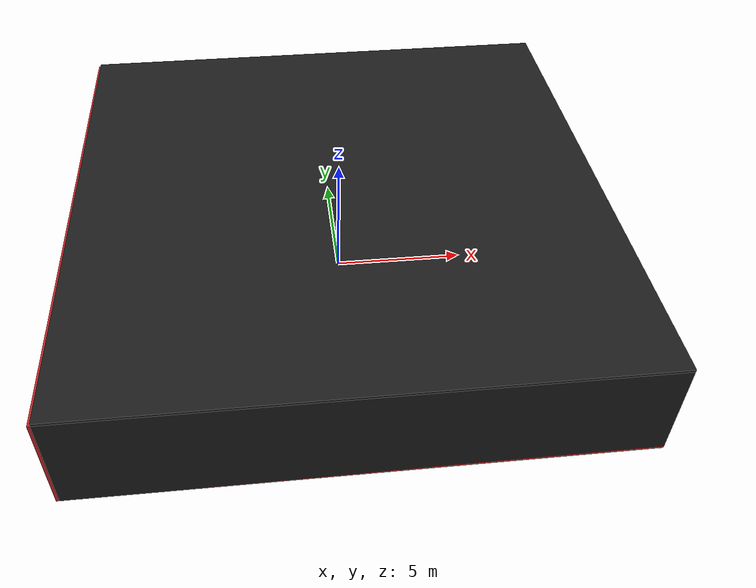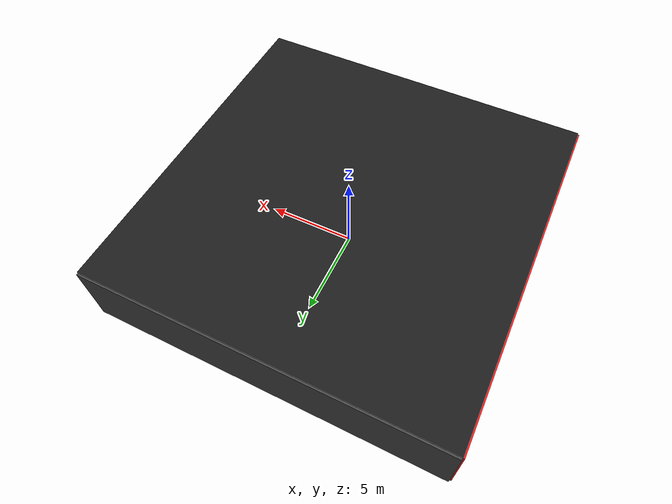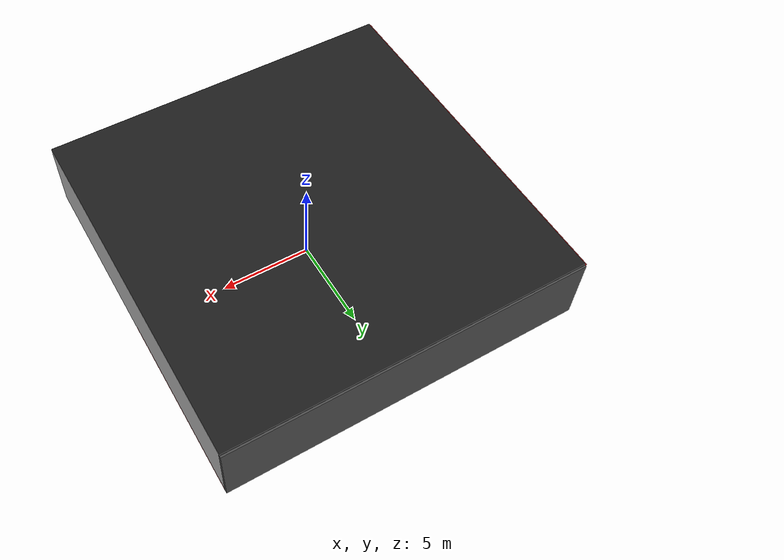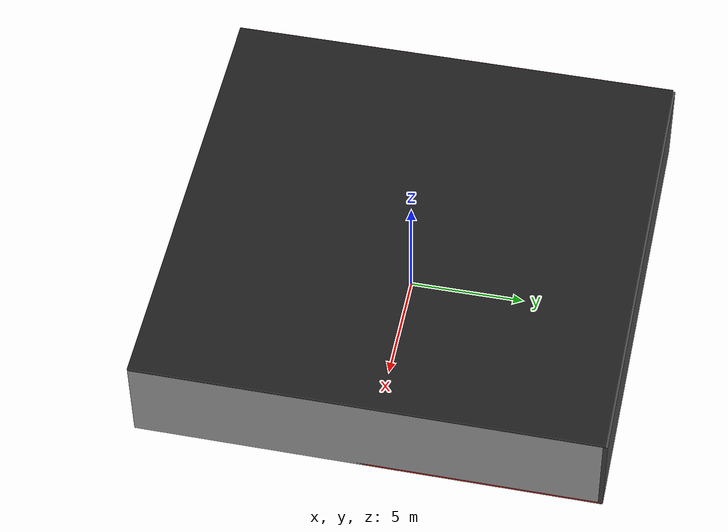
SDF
<sdf version="1.4">
 <world name="default">
  <physics type="ode">
   <max_step_size>0.001</max_step_size>
   <real_time_factor>1</real_time_factor>
   <real_time_update_rate>1000</real_time_update_rate>
   <gravity>0 0 -9.8</gravity>
  </physics>
  <scene><ambient>0.4 0.4 0.4 1</ambient><background>0.7 0.7 0.7 1</background><shadows>1</shadows></scene>
  <model name="Surrounding">
   <static>1</static>
   <link name="Ceiling">
    <collision name="Ceiling_Collision"><geometry><box><size>20 20 0.1</size></box></geometry></collision>
    <visual name="Ceiling_Visual">
     <geometry><box><size>20 20 0.1</size></box></geometry>
     <material>
      <script><uri>file://media/materials/scripts/gazebo.material</uri><name>Gazebo/Black</name></script>
     </material>
    </visual>
    <pose>0 0 4.05 0 0 0</pose>
   </link>
   <link name="Wall_South">
    <collision name="Wall_South_Collision">
     <geometry><box><size>20 0 4</size></box></geometry>
     <pose>0 0 2 0 -0 0</pose>
    </collision>
    <visual name="Wall_South_Visual">
     <pose>0 0 2 0 -0 0</pose>
     <geometry><box><size>20 0 4</size></box></geometry>
     <material>
      <script><uri>file://media/materials/scripts/gazebo.material</uri><name>Gazebo/Black</name></script>
     </material>
    </visual>
    <velocity_decay><linear>0</linear><angular>0</angular></velocity_decay>
    <pose>0 -10 0 0 -0 0</pose>
   </link>
   <link name="Wall_East">
    <collision name="Wall_21_Collision">
     <geometry><box><size>20 0 4</size></box></geometry>
     <pose>0 0 2 0 -0 0</pose>
    </collision>
    <visual name="Wall_21_Visual">
     <pose>0 0 2 0 -0 0</pose>
     <geometry><box><size>20 0 4</size></box></geometry>
     <material>
      <script><uri>file://media/materials/scripts/gazebo.material</uri><name>Gazebo/CloudySky</name></script>
     </material>
    </visual>
    <velocity_decay><linear>0</linear><angular>0</angular></velocity_decay>
    <pose>10 0 0 0 -0 1.5708</pose>
   </link>
   <link name="Wall_North">
    <collision name="Wall_22_Collision">
     <geometry><box><size>20 0.2 4</size></box></geometry>
     <pose>0 0 2 0 -0 0</pose>
    </collision>
    <visual name="Wall_22_Visual">
     <pose>0 0 2 0 -0 0</pose>
     <geometry><box><size>20 0.2 4</size></box></geometry>
     <material>
      <script><uri>file://media/materials/scripts/gazebo.material</uri><name>Gazebo/Road</name></script>
     </material>
    </visual>
    <velocity_decay><linear>0</linear><angular>0</angular></velocity_decay>
    <pose>0 10 0 0 -0 0</pose>
   </link>
   <link name="Wall_West">
    <collision name="Wall_23_Collision">
     <geometry><box><size>20 0.2 4</size></box></geometry>
     <pose>0 0 2 0 -0 0</pose>
    </collision>
    <visual name="Wall_23_Visual">
     <pose>0 0 2 0 -0 0</pose>
     <geometry><box><size>20 0.2 4</size></box></geometry>
     <material>
      <script><uri>file://media/materials/scripts/gazebo.material</uri><name>Gazebo/RedGlow</name></script>
     </material>
    </visual>
    <velocity_decay><linear>0</linear><angular>0</angular></velocity_decay>
    <pose>-10 0 0 0 0 -1.5708</pose>
   </link>
   <link name="Ground_link">
    <collision name="collision">
     <pose>0 0 .05 0 -0 0</pose>
     <geometry><box><size>20 20 0.1</size></box></geometry>
    </collision>
    <visual name="visual">
     <pose>0 0 .05 0 -0 0</pose>
     <geometry><box><size>20 20 0.1</size></box></geometry>
     <material>
      <script><uri>file://media/materials/scripts/gazebo.material</uri><name>Gazebo/RedBright</name></script>
     </material>
    </visual>
   </link>
   <static>1</static>
  </model>
  <spherical_coordinates>
   <surface_model>EARTH_WGS84</surface_model>
   <latitude_deg>0</latitude_deg>
   <longitude_deg>0</longitude_deg>
   <elevation>0</elevation>
   <heading_deg>0</heading_deg>
  </spherical_coordinates>
  <light name="lightball_0" type="diffuse">
   <diffuse>0.8 0.8 0.8 1</diffuse>
   <specular>0.2 0.2 0.2 1</specular>
   <attenuation>
    <range>100</range>
    <constant>0.7</constant>
    <linear>0.01</linear>
    <quadratic>0.001</quadratic>
   </attenuation>
   <direction>-0.5 0.1 -0.9</direction>
   <pose>-5.65544044514 7.02191663971 2.21625403537 0 0 0</pose>
  </light>
  <light name="lightball_1" type="diffuse">
   <diffuse>0.8 0.8 0.8 1</diffuse>
   <specular>0.2 0.2 0.2 1</specular>
   <attenuation>
    <range>100</range>
    <constant>0.7</constant>
    <linear>0.01</linear>
    <quadratic>0.001</quadratic>
   </attenuation>
   <direction>-0.5 0.1 -0.9</direction>
   <pose>0.12566651512 4.26476824258 2.81519358849 0 0 0</pose>
  </light>
  <light name="lightball_2" type="diffuse">
   <diffuse>0.8 0.8 0.8 1</diffuse>
   <specular>0.2 0.2 0.2 1</specular>
   <attenuation>
    <range>100</range>
    <constant>0.7</constant>
    <linear>0.01</linear>
    <quadratic>0.001</quadratic>
   </attenuation>
   <direction>-0.5 0.1 -0.9</direction>
   <pose>2.00375066644 9.4412745407 3.8100584397 0 0 0</pose>
  </light>
  <light name="lightball_3" type="diffuse">
   <diffuse>0.8 0.8 0.8 1</diffuse>
   <specular>0.2 0.2 0.2 1</specular>
   <attenuation>
    <range>100</range>
    <constant>0.7</constant>
    <linear>0.01</linear>
    <quadratic>0.001</quadratic>
   </attenuation>
   <direction>-0.5 0.1 -0.9</direction>
   <pose>-9.04742033925 7.45092103965 3.52242452734 0 0 0</pose>
  </light>
  <light name="lightball_4" type="diffuse">
   <diffuse>0.8 0.8 0.8 1</diffuse>
   <specular>0.2 0.2 0.2 1</specular>
   <attenuation>
    <range>100</range>
    <constant>0.7</constant>
    <linear>0.01</linear>
    <quadratic>0.001</quadratic>
   </attenuation>
   <direction>-0.5 0.1 -0.9</direction>
   <pose>0.954119508809 2.45390739527 2.41474506617 0 0 0</pose>
  </light>
  <light name="lightball_5" type="diffuse">
   <diffuse>0.8 0.8 0.8 1</diffuse>
   <specular>0.2 0.2 0.2 1</specular>
   <attenuation>
    <range>100</range>
    <constant>0.7</constant>
    <linear>0.01</linear>
    <quadratic>0.001</quadratic>
   </attenuation>
   <direction>-0.5 0.1 -0.9</direction>
   <pose>-9.25364787772 9.75307263464 3.48783780533 0 0 0</pose>
  </light>
  <light name="lightball_6" type="diffuse">
   <diffuse>0.8 0.8 0.8 1</diffuse>
   <specular>0.2 0.2 0.2 1</specular>
   <attenuation>
    <range>100</range>
    <constant>0.7</constant>
    <linear>0.01</linear>
    <quadratic>0.001</quadratic>
   </attenuation>
   <direction>-0.5 0.1 -0.9</direction>
   <pose>4.6330003109 7.43826111415 1.7217187812 0 0 0</pose>
  </light>
  <light name="lightball_7" type="diffuse">
   <diffuse>0.8 0.8 0.8 1</diffuse>
   <specular>0.2 0.2 0.2 1</specular>
   <attenuation>
    <range>100</range>
    <constant>0.7</constant>
    <linear>0.01</linear>
    <quadratic>0.001</quadratic>
   </attenuation>
   <direction>-0.5 0.1 -0.9</direction>
   <pose>3.90048517885 -1.39625332285 3.67928792765 0 0 0</pose>
  </light>
  <light name="lightball_8" type="diffuse">
   <diffuse>0.8 0.8 0.8 1</diffuse>
   <specular>0.2 0.2 0.2 1</specular>
   <attenuation>
    <range>100</range>
    <constant>0.7</constant>
    <linear>0.01</linear>
    <quadratic>0.001</quadratic>
   </attenuation>
   <direction>-0.5 0.1 -0.9</direction>
   <pose>-9.45777092876 8.31967509416 0.876376761826 0 0 0</pose>
  </light>
  <light name="lightball_9" type="diffuse">
   <diffuse>0.8 0.8 0.8 1</diffuse>
   <specular>0.2 0.2 0.2 1</specular>
   <attenuation>
    <range>100</range>
    <constant>0.7</constant>
    <linear>0.01</linear>
    <quadratic>0.001</quadratic>
   </attenuation>
   <direction>-0.5 0.1 -0.9</direction>
   <pose>-5.054435005 9.84413178763 1.83237255127 0 0 0</pose>
  </light>
  <light name="lightball_10" type="diffuse">
   <diffuse>0.8 0.8 0.8 1</diffuse>
   <specular>0.2 0.2 0.2 1</specular>
   <attenuation>
    <range>100</range>
    <constant>0.7</constant>
    <linear>0.01</linear>
    <quadratic>0.001</quadratic>
   </attenuation>
   <direction>-0.5 0.1 -0.9</direction>
   <pose>-0.0193565742356 9.38335470749 0.862201896596 0 0 0</pose>
  </light>
  <light name="lightball_11" type="diffuse">
   <diffuse>0.8 0.8 0.8 1</diffuse>
   <specular>0.2 0.2 0.2 1</specular>
   <attenuation>
    <range>100</range>
    <constant>0.7</constant>
    <linear>0.01</linear>
    <quadratic>0.001</quadratic>
   </attenuation>
   <direction>-0.5 0.1 -0.9</direction>
   <pose>6.50033916668 -5.27916973938 1.75034545121 0 0 0</pose>
  </light>
  <light name="lightball_12" type="diffuse">
   <diffuse>0.8 0.8 0.8 1</diffuse>
   <specular>0.2 0.2 0.2 1</specular>
   <attenuation>
    <range>100</range>
    <constant>0.7</constant>
    <linear>0.01</linear>
    <quadratic>0.001</quadratic>
   </attenuation>
   <direction>-0.5 0.1 -0.9</direction>
   <pose>0.205709833052 -5.02302526833 2.53089565744 0 0 0</pose>
  </light>
  <include><uri>model://table</uri><pose>-6.75000601268 4.03980003492 0 0 0 2.28812645972</pose></include>
  <include><uri>model://cabinet</uri><pose>-4.75488977946 -0.812971638849 0 0 0 2.36401537334</pose></include>
  <include>
   <uri>model://construction_cone</uri>
   <pose>-4.95462278742 3.72851975318 0 0 0 1.71001068548</pose>
  </include>
  <include>
   <uri>model://construction_cone</uri>
   <pose>-1.63628865783 4.46306849179 0 0 0 2.97767426187</pose>
  </include>
  <include>
   <uri>model://robocup_3Dsim_goal</uri>
   <pose>-1.00468339253 8.1021764121 0 0 0 2.06685353866</pose>
  </include>
  <include><uri>model://cabinet</uri><pose>1.27231313472 -7.12629946406 0 0 0 1.23900010423</pose></include>
  <include><uri>model://cabinet</uri><pose>3.81722885604 2.24252906187 0 0 0 2.25037412476</pose></include>
  <include><uri>model://cabinet</uri><pose>7.40655995103 -7.56168096835 0 0 0 2.94491494929</pose></include>
  <include><uri>model://cabinet</uri><pose>7.50240175398 3.97386197792 0 0 0 1.65293978229</pose></include>
 </world>
</sdf>

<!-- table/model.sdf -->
<sdf version="1.5">
  <model name="table">
    <static>true</static>
    <link name="link">
      <collision name="surface">
        <pose>0 0 1.0 0 0 0</pose>
        <geometry>
          <box>
            <size>1.5 0.8 0.03</size>
          </box>
        </geometry>
        <surface>
          <friction>
            <ode>
              <mu>0.6</mu>
              <mu2>0.6</mu2>
            </ode>
          </friction>
        </surface>
      </collision>
      <visual name="visual1">
        <pose>0 0 1.0 0 0 0</pose>
        <geometry>
          <box>
            <size>1.5 0.8 0.03</size>
          </box>
        </geometry>
        <material>
          <script>
            <uri>model://media/materials/scripts/gazebo.material</uri>
            <name>Gazebo/Wood</name>
          </script>
        </material>
      </visual>
      <collision name="front_left_leg">
        <pose>0.68 0.38 0.5 0 0 0</pose>
        <geometry>
          <cylinder>
            <radius>0.02</radius>
            <length>1.0</length>
          </cylinder>
        </geometry>
      </collision>
      <visual name="front_left_leg">
        <pose>0.68 0.38 0.5 0 0 0</pose>
        <geometry>
          <cylinder>
            <radius>0.02</radius>
            <length>1.0</length>
          </cylinder>
        </geometry>
        <material>
          <script>
            <uri>model://media/materials/scripts/gazebo.material</uri>
            <name>Gazebo/Grey</name>
          </script>
        </material>
      </visual>
      <collision name="front_right_leg">
        <pose>0.68 -0.38 0.5 0 0 0</pose>
        <geometry>
          <cylinder>
            <radius>0.02</radius>
            <length>1.0</length>
          </cylinder>
        </geometry>
      </collision>
      <visual name="front_right_leg">
        <pose>0.68 -0.38 0.5 0 0 0</pose>
        <geometry>
          <cylinder>
            <radius>0.02</radius>
            <length>1.0</length>
          </cylinder>
        </geometry>
        <material>
          <script>
            <uri>model://media/materials/scripts/gazebo.material</uri>
            <name>Gazebo/Grey</name>
          </script>
        </material>
      </visual>
      <collision name="back_right_leg">
        <pose>-0.68 -0.38 0.5 0 0 0</pose>
        <geometry>
          <cylinder>
            <radius>0.02</radius>
            <length>1.0</length>
          </cylinder>
        </geometry>
      </collision>
      <visual name="back_right_leg">
        <pose>-0.68 -0.38 0.5 0 0 0</pose>
        <geometry>
          <cylinder>
            <radius>0.02</radius>
            <length>1.0</length>
          </cylinder>
        </geometry>
        <material>
          <script>
            <uri>model://media/materials/scripts/gazebo.material</uri>
            <name>Gazebo/Grey</name>
          </script>
        </material>
      </visual>
      <collision name="back_left_leg">
        <pose>-0.68 0.38 0.5 0 0 0</pose>
        <geometry>
          <cylinder>
            <radius>0.02</radius>
            <length>1.0</length>
          </cylinder>
        </geometry>
      </collision>
      <visual name="back_left_leg">
        <pose>-0.68 0.38 0.5 0 0 0</pose>
        <geometry>
          <cylinder>
            <radius>0.02</radius>
            <length>1.0</length>
          </cylinder>
        </geometry>
        <material>
          <script>
            <uri>model://media/materials/scripts/gazebo.material</uri>
            <name>Gazebo/Grey</name>
          </script>
        </material>
      </visual>
    </link>
  </model>
</sdf>

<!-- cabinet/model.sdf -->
<sdf version="1.5">
  <model name="cabinet">
    <static>true</static>
    <link name="cabinet_bottom_plate">
      <inertial>
        <pose>0 0 -1 0 0 0</pose>
        <inertia>
          <ixx>2.050000</ixx>
          <ixy>0</ixy>
          <ixz>0</ixz>
          <iyy>2.050000</iyy>
          <iyz>0</iyz>
          <izz>2.050000</izz>
        </inertia>
        <mass>25.000000</mass>
      </inertial>
      <collision name="cabinet_bottom_plate_geom">
        <pose>0 0 0.010000 0 0 0</pose>
        <geometry>
          <box>
            <size>0.450000 0.450000 0.020000</size>
          </box>
        </geometry>
      </collision>
      <visual name="cabinet_bottom_plate_geom_visual">
        <pose>0 0 0.010000 0 0 0</pose>
        <geometry>
          <box>
            <size>0.450000 0.450000 0.020000</size>
          </box>
        </geometry>
        <material>
          <script>
            <uri>model://media/materials/scripts/gazebo.material</uri>
            <name>Gazebo/Wood</name>
          </script>
        </material>
      </visual>
      <collision name="cabinet_bottom_plate_geom_cabinet_back_plate">
        <pose>0.235000 0 0.510000 0 0 0</pose>
        <geometry>
          <box>
            <size>0.020000 0.450000 1.020000</size>
          </box>
        </geometry>
      </collision>
      <visual name="cabinet_bottom_plate_geom_cabinet_back_plate_visual">
        <pose>0.235000 0 0.510000 0 0 0</pose>
        <geometry>
          <box>
            <size>0.020000 0.450000 1.020000</size>
          </box>
        </geometry>
        <material>
          <script>
            <uri>model://media/materials/scripts/gazebo.material</uri>
            <name>Gazebo/Wood</name>
          </script>
        </material>
      </visual>
      <collision name="cabinet_bottom_plate_geom_cabinet_left_plate">
        <pose>0 0.235000 0.510000 0 0 0</pose>
        <geometry>
          <box>
            <size>0.450000 0.020000 1.020000</size>
          </box>
        </geometry>
      </collision>
      <visual name="cabinet_bottom_plate_geom_cabinet_left_plate_visual">
        <pose>0 0.235000 0.510000 0 0 0</pose>
        <geometry>
          <box>
            <size>0.450000 0.020000 1.020000</size>
          </box>
        </geometry>
        <material>
          <script>
            <uri>model://media/materials/scripts/gazebo.material</uri>
            <name>Gazebo/Wood</name>
          </script>
        </material>
      </visual>
      <collision name="cabinet_bottom_plate_geom_cabinet_middle_plate">
        <pose>0 0 0.510000 0 0 0</pose>
        <geometry>
          <box>
            <size>0.450000 0.450000 0.020000</size>
          </box>
        </geometry>
      </collision>
      <visual name="cabinet_bottom_plate_geom_cabinet_middle_plate_visual">
        <pose>0 0 0.510000 0 0 0</pose>
        <geometry>
          <box>
            <size>0.450000 0.450000 0.020000</size>
          </box>
        </geometry>
        <material>
          <script>
            <uri>model://media/materials/scripts/gazebo.material</uri>
            <name>Gazebo/Wood</name>
          </script>
        </material>
      </visual>
      <collision name="cabinet_bottom_plate_geom_cabinet_right_plate">
        <pose>0 -0.235000 0.510000 0 0 0</pose>
        <geometry>
          <box>
            <size>0.450000 0.020000 1.020000</size>
          </box>
        </geometry>
      </collision>
      <visual name="cabinet_bottom_plate_geom_cabinet_right_plate_visual">
        <pose>0 -0.235000 0.510000 0 0 0</pose>
        <geometry>
          <box>
            <size>0.450000 0.020000 1.020000</size>
          </box>
        </geometry>
        <material>
          <script>
            <uri>model://media/materials/scripts/gazebo.material</uri>
            <name>Gazebo/Wood</name>
          </script>
        </material>
      </visual>
      <collision name="cabinet_bottom_plate_geom_cabinet_top_plate">
        <pose>0 0 1.010000 0 0 0</pose>
        <geometry>
          <box>
            <size>0.450000 0.450000 0.020000</size>
          </box>
        </geometry>
      </collision>
      <visual name="cabinet_bottom_plate_geom_cabinet_top_plate_visual">
        <pose>0 0 1.010000 0 0 0</pose>
        <geometry>
          <box>
            <size>0.450000 0.450000 0.020000</size>
          </box>
        </geometry>
        <material>
          <script>
            <uri>model://media/materials/scripts/gazebo.material</uri>
            <name>Gazebo/Wood</name>
          </script>
        </material>
      </visual>
    </link>
  </model>
</sdf>

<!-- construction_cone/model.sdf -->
<sdf version="1.5">
  <model name="Construction Cone">
    <link name="link">
      <collision name="collision">
        <geometry>
          <mesh>
            <scale>10 10 10</scale>
            <uri>file://isr-testbed/construction_cone/meshes/construction_cone.dae</uri>
          </mesh>
        </geometry>
      </collision>
      <visual name="visual">
        <geometry>
          <mesh>
            <scale>10 10 10</scale>
            <uri>file://isr-testbed/construction_cone/meshes/construction_cone.dae</uri>
          </mesh>
        </geometry>
      </visual>
    </link>
  </model>
</sdf>

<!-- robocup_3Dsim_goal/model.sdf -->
<sdf version="1.5">
  <model name="robocup_3d_goal">
    <static>true</static>
    <link name="left_post">
      <pose>0 1.05 0.45 0 0 0</pose>
      <collision name="collision">
        <geometry>
          <cylinder>
            <radius>0.05</radius>
            <length>0.9</length>
          </cylinder>
        </geometry>
      </collision>
      <visual name="visual">
        <geometry>
          <cylinder>
            <radius>0.05</radius>
            <length>0.9</length>
          </cylinder>
        </geometry>
        <material>
          <script>
            <uri>file://media/materials/scripts/gazebo.material</uri>
            <name>Gazebo/ZincYellow</name>
          </script>
        </material>
      </visual>
    </link>
    <link name="left_support_horiz_lower">
      <pose>0.30 1.05 0.01 0 0 0</pose>
      <collision name="collision">
        <geometry>
          <box>
            <size>0.50 0.02 0.02</size>
          </box>
        </geometry>
      </collision>
      <visual name="visual">
        <geometry>
          <box>
            <size>0.50 0.02 0.02</size>
          </box>
        </geometry>
        <material>
          <script>
            <uri>file://media/materials/scripts/gazebo.material</uri>
            <name>Gazebo/White</name>
          </script>
        </material>
      </visual>
    </link>
    <link name="left_support_horiz_upper">
      <pose>0.30 1.05 0.79 0 0 0</pose>
      <collision name="collision">
        <geometry>
          <box>
            <size>0.50 0.02 0.02</size>
          </box>
        </geometry>
      </collision>
      <visual name="visual">
        <geometry>
          <box>
            <size>0.50 0.02 0.02</size>
          </box>
        </geometry>
        <material>
          <script>
            <uri>file://media/materials/scripts/gazebo.material</uri>
            <name>Gazebo/White</name>
          </script>
        </material>
      </visual>
    </link>
    <link name="left_support_vertical">
      <pose>0.56 1.05 0.4 0 1.5708 0</pose>
      <collision name="collision">
        <geometry>
          <box>
            <size>0.80 0.02 0.02</size>
          </box>
        </geometry>
      </collision>
      <visual name="visual">
        <geometry>
          <box>
            <size>0.80 0.02 0.02</size>
          </box>
        </geometry>
        <material>
          <script>
            <uri>file://media/materials/scripts/gazebo.material</uri>
            <name>Gazebo/White</name>
          </script>
        </material>
      </visual>
    </link>
    <link name="right_support_horiz_lower">
      <pose>0.30 -1.05 0.01 0 0 0</pose>
      <collision name="collision">
        <geometry>
          <box>
            <size>0.50 0.02 0.02</size>
          </box>
        </geometry>
      </collision>
      <visual name="visual">
        <geometry>
          <box>
            <size>0.50 0.02 0.02</size>
          </box>
        </geometry>
        <material>
          <script>
            <uri>file://media/materials/scripts/gazebo.material</uri>
            <name>Gazebo/White</name>
          </script>
        </material>
      </visual>
    </link>
    <link name="right_support_horiz_upper">
      <pose>0.30 -1.05 0.79 0 0 0</pose>
      <collision name="collision">
        <geometry>
          <box>
            <size>0.50 0.02 0.02</size>
          </box>
        </geometry>
      </collision>
      <visual name="visual">
        <geometry>
          <box>
            <size>0.50 0.02 0.02</size>
          </box>
        </geometry>
        <material>
          <script>
            <uri>file://media/materials/scripts/gazebo.material</uri>
            <name>Gazebo/White</name>
          </script>
        </material>
      </visual>
    </link>
    <link name="right_support_vertical">
      <pose>0.56 -1.05 0.4 0 1.5708 0</pose>
      <collision name="collision">
        <geometry>
          <box>
            <size>0.80 0.02 0.02</size>
          </box>
        </geometry>
      </collision>
      <visual name="visual">
        <geometry>
          <box>
            <size>0.80 0.02 0.02</size>
          </box>
        </geometry>
        <material>
          <script>
            <uri>file://media/materials/scripts/gazebo.material</uri>
            <name>Gazebo/White</name>
          </script>
        </material>
      </visual>
    </link>
    <link name="center_support_horiz_lower">
      <pose>0.56 0 0.01 0 1.5708 0</pose>
      <collision name="collision">
        <geometry>
          <box>
            <size>0.02 2.08 0.02</size>
          </box>
        </geometry>
      </collision>
      <visual name="visual">
        <geometry>
          <box>
            <size>0.02 2.08 0.02</size>
          </box>
        </geometry>
        <material>
          <script>
            <uri>file://media/materials/scripts/gazebo.material</uri>
            <name>Gazebo/White</name>
          </script>
        </material>
      </visual>
    </link>
    <link name="center_support_horiz_upper">
      <pose>0.56 0 0.79 0 1.5708 0</pose>
      <collision name="collision">
        <geometry>
          <box>
            <size>0.02 2.08 0.02</size>
          </box>
        </geometry>
      </collision>
      <visual name="visual">
        <geometry>
          <box>
            <size>0.02 2.08 0.02</size>
          </box>
        </geometry>
        <material>
          <script>
            <uri>file://media/materials/scripts/gazebo.material</uri>
            <name>Gazebo/White</name>
          </script>
        </material>
      </visual>
    </link>
    <link name="right_post">
      <pose>0 -1.05 0.45 0 0 0</pose>
      <collision name="collision">
        <geometry>
          <cylinder>
            <radius>0.05</radius>
            <length>0.9</length>
          </cylinder>
        </geometry>
      </collision>
      <visual name="visual">
        <geometry>
          <cylinder>
            <radius>0.05</radius>
            <length>0.9</length>
          </cylinder>
        </geometry>
        <material>
          <script>
            <uri>file://media/materials/scripts/gazebo.material</uri>
            <name>Gazebo/ZincYellow</name>
          </script>
        </material>
      </visual>
    </link>
    <link name="crossbar">
      <pose>0 0 0.85 1.57 1.57 0</pose>
      <collision name="collision">
        <geometry>
          <cylinder>
            <radius>0.05</radius>
            <length>2.0</length>
          </cylinder>
        </geometry>
      </collision>
      <visual name="visual">
        <geometry>
          <cylinder>
            <radius>0.05</radius>
            <length>2.0</length>
          </cylinder>
        </geometry>
        <material>
          <script>
            <uri>file://media/materials/scripts/gazebo.material</uri>
            <name>Gazebo/ZincYellow</name>
          </script>
        </material>
      </visual>
    </link>
    <link name="center_net">
      <pose>0.56 0 0.40 0 0 0</pose>
      <collision name="collision">
        <geometry>
          <box>
            <size>0.01 2.1 0.80</size>
          </box>
        </geometry>
      </collision>
      <visual name="visual">
        <geometry>
          <box>
            <size>0.01 2.1 0.80</size>
          </box>
        </geometry>
        <material>
          <script>
            <uri>model://../model_source/models/robocup09_spl_field/materials/scripts/</uri>
            <uri>model://../model_source/models/robocup09_spl_field/materials/textures/</uri>
            <name>RoboCup/Net</name>
          </script>
        </material>
      </visual>
    </link>
    <link name="left_net">
      <pose>0.30 1.05 0.40 0 0 0</pose>
      <collision name="collision">
        <geometry>
          <box>
            <size>0.50 0.01 0.76</size>
          </box>
        </geometry>
      </collision>
      <visual name="visual">
        <geometry>
          <box>
            <size>0.50 0.01 0.76</size>
          </box>
        </geometry>
        <material>
          <script>
            <uri>model://../model_source/models/robocup09_spl_field/materials/scripts/</uri>
            <uri>model://../model_source/models/robocup09_spl_field/materials/textures/</uri>
            <name>RoboCup/Net</name>
          </script>
        </material>
      </visual>
    </link>
    <link name="right_net">
      <pose>0.30 -1.05 0.40 0 0 0</pose>
      <collision name="collision">
        <geometry>
          <box>
            <size>0.50 0.01 0.76</size>
          </box>
        </geometry>
      </collision>
      <visual name="visual">
        <geometry>
          <box>
            <size>0.50 0.01 0.76</size>
          </box>
        </geometry>
        <material>
          <script>
            <uri>model://../model_source/models/robocup09_spl_field/materials/scripts/</uri>
            <uri>model://../model_source/models/robocup09_spl_field/materials/textures/</uri>
            <name>RoboCup/Net</name>
          </script>
        </material>
      </visual>
    </link>
  </model>
</sdf>
